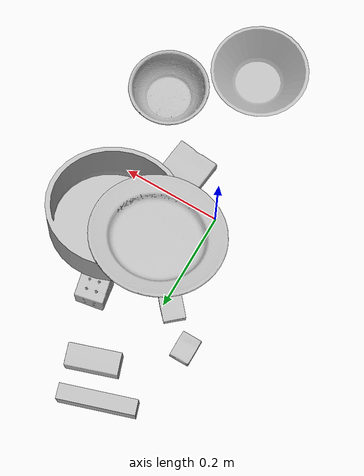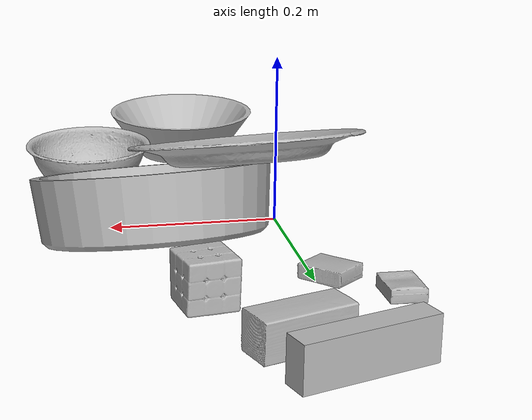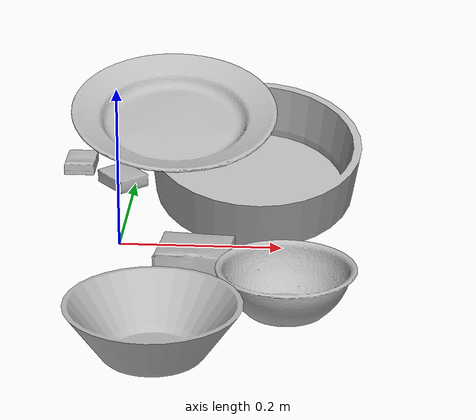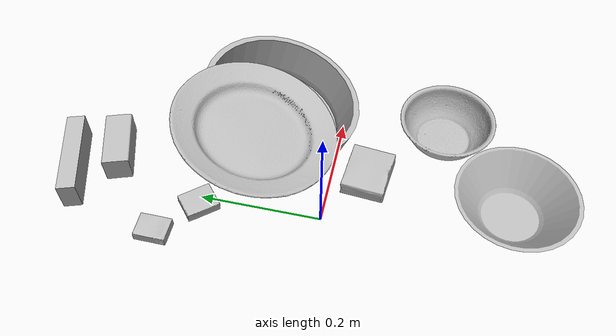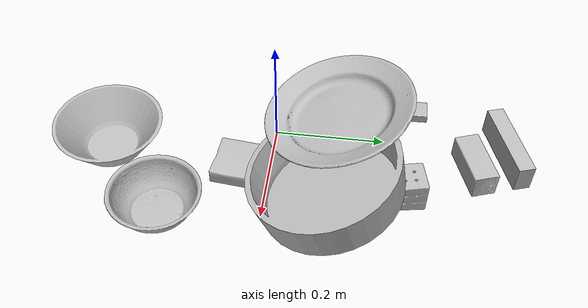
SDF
<sdf version="1.4">
  <world name="default">
    <light name="light1" type="point">
      <pose>0 0 1 0 0 0</pose>
      <diffuse>3 3 3 1</diffuse>
      <specular>3 3 3 1</specular>
    </light>
    <light name="light2" type="point">
      <pose>0 0.5 2 0 0 0</pose>
      <diffuse>1 1 1 1</diffuse>
      <specular>1 1 1 1</specular>
    </light>
    <light name="light3" type="point">
      <pose>0 0.5 2 0 0 0</pose>
      <diffuse>3 3 3 1</diffuse>
      <specular>3 3 3 1</specular>
    </light>
    <scene>
      <ambient>0.7 0.7 0.7</ambient>
    </scene>
    <model name="box1">
      <link name="link_box1">
        <collision name="default">
          <geometry>
            <mesh>
              <uri>model://pudding_box/collision_meshes/collision.obj</uri>
              <scale>0.5 0.5 0.5</scale>
            </mesh>
          </geometry>
          <surface>
            <friction>
              <ode>
                <mu>0.5</mu>
                <mu2>0.5</mu2>
              </ode>
            </friction>
          <contact>
        <ode>
            <max_vel>0</max_vel>
            <min_depth>0.0001</min_depth>
            <kp>1e8</kp>
        </ode>
    </contact></surface>
        </collision>
        <visual name="default">
          <geometry>
            <mesh>
              <uri>model://pudding_box/visual_meshes/visual.dae</uri>
              <scale>0.5 0.5 0.5</scale>
            </mesh>
          </geometry>
        </visual>
        <inertial>
          <mass>0.06043573096394539</mass>
          <pose>0.0002447410661261529 0.00040339428232982755 -0.0002594413817860186 0.005213102238104987 -0.006603800125102895 0.020079827017580043</pose>
          <inertia>
            <ixx>1.707987e-05</ixx>
            <iyy>1.1491458e-05</iyy>
            <izz>2.522289e-05</izz>
            <ixy>0</ixy>
            <ixz>0</ixz>
            <iyz>0</iyz>
          </inertia>
        </inertial>
      </link>
      <pose>-0.017067410051822662 0.19718965888023376 0.009862900711596012 0.022348211565890168 -0.011391853891993075 0.7199606608789171</pose>
    </model>
    <model name="box11">
      <link name="link_box11">
        <collision name="default">
          <geometry>
            <mesh>
              <uri>model://wood_block/collision_meshes/collision.obj</uri>
              <scale>0.5 0.5 0.5</scale>
            </mesh>
          </geometry>
          <surface>
            <friction>
              <ode>
                <mu>0.5</mu>
                <mu2>0.5</mu2>
              </ode>
            </friction>
          <contact>
        <ode>
            <max_vel>0</max_vel>
            <min_depth>0.0001</min_depth>
            <kp>1e8</kp>
        </ode>
    </contact></surface>
        </collision>
        <visual name="default">
          <geometry>
            <mesh>
              <uri>model://wood_block/visual_meshes/visual.dae</uri>
              <scale>0.5 0.5 0.5</scale>
            </mesh>
          </geometry>
        </visual>
        <inertial>
          <mass>0.22556793689727783</mass>
          <pose>-2.9066577553749084e-06 -0.000285404734313488 0.00013204290007706732 -0.05220975528916272 -0.005192696013017626 -0.0068613779154948285</pose>
          <inertia>
            <ixx>7.5461e-05</ixx>
            <iyy>0.00023838133</iyy>
            <izz>0.00023748967</izz>
            <ixy>0</ixy>
            <ixz>0</ixz>
            <iyz>0</iyz>
          </inertia>
        </inertial>
      </link>
      <pose>0.0559745654463768 0.36210376024246216 0.022629261016845703 -0.005208504183555906 0.005718701864859032 0.32936001406847104</pose>
    </model>
    <model name="box2">
      <link name="link_box2">
        <collision name="default">
          <geometry>
            <mesh>
              <uri>model://jenga/collision_meshes/collision.obj</uri>
              <scale>1.0 1.0 1.0</scale>
            </mesh>
          </geometry>
          <surface>
            <friction>
              <ode>
                <mu>0.5</mu>
                <mu2>0.5</mu2>
              </ode>
            </friction>
          <contact>
        <ode>
            <max_vel>0</max_vel>
            <min_depth>0.0001</min_depth>
            <kp>1e8</kp>
        </ode>
    </contact></surface>
        </collision>
        <visual name="default">
          <geometry>
            <mesh>
              <uri>model://jenga/visual_meshes/visual.dae</uri>
              <scale>1.0 1.0 1.0</scale>
            </mesh>
          </geometry>
        </visual>
        <inertial>
          <mass>0.2534179985523224</mass>
          <pose>-2.502856091268768e-07 -0.00010250010382151231 -4.0923401684267446e-05 0.0 -7.342154049184251e-07 0.0</pose>
          <inertia>
            <ixx>7.012692e-05</ixx>
            <iyy>0.00047517804</iyy>
            <izz>0.000507293</izz>
            <ixy>0</ixy>
            <ixz>0</ixz>
            <iyz>0</iyz>
          </inertia>
        </inertial>
      </link>
      <pose>0.00974248442798853 0.42227575182914734 0.02470194175839424 1.577497996110555 -1.9623707330678693e-07 -2.8238380409018946</pose>
    </model>
    <model name="box21">
      <link name="link_box21">
        <collision name="default">
          <geometry>
            <mesh>
              <uri>model://cracker_box/collision_meshes/collision.obj</uri>
              <scale>0.25 0.25 0.25</scale>
            </mesh>
          </geometry>
          <surface>
            <friction>
              <ode>
                <mu>0.5</mu>
                <mu2>0.5</mu2>
              </ode>
            </friction>
          <contact>
        <ode>
            <max_vel>0</max_vel>
            <min_depth>0.0001</min_depth>
            <kp>1e8</kp>
        </ode>
    </contact></surface>
        </collision>
        <visual name="default">
          <geometry>
            <mesh>
              <uri>model://cracker_box/visual_meshes/visual.dae</uri>
              <scale>0.25 0.25 0.25</scale>
            </mesh>
          </geometry>
        </visual>
        <inertial>
          <mass>0.04045860841870308</mass>
          <pose>0.0002366030093980953 6.358561950037256e-05 -0.0004257383698131889 -0.0003162076898946344 -0.011106488668808423 0.0025467959335197018</pose>
          <inertia>
            <ixx>6.4317906e-06</ixx>
            <iyy>1.062015e-05</iyy>
            <izz>1.5155927e-05</izz>
            <ixy>0</ixy>
            <ixz>0</ixz>
            <iyz>0</iyz>
          </inertia>
        </inertial>
      </link>
      <pose>-0.07954613119363785 0.2529817819595337 0.009096029214560986 -0.014050445695715993 -0.0050166176509792515 1.570976084937182</pose>
    </model>
    <model name="box3">
      <link name="link_box3">
        <collision name="default">
          <geometry>
            <mesh>
              <uri>model://rubiks_cube/collision_meshes/collision.obj</uri>
              <scale>1.0 1.0 1.0</scale>
            </mesh>
          </geometry>
          <surface>
            <friction>
              <ode>
                <mu>0.5</mu>
                <mu2>0.5</mu2>
              </ode>
            </friction>
          <contact>
        <ode>
            <max_vel>0</max_vel>
            <min_depth>0.0001</min_depth>
            <kp>1e8</kp>
        </ode>
    </contact></surface>
        </collision>
        <visual name="default">
          <geometry>
            <mesh>
              <uri>model://rubiks_cube/visual_meshes/visual.dae</uri>
              <scale>1.0 1.0 1.0</scale>
            </mesh>
          </geometry>
        </visual>
        <inertial>
          <mass>0.12779320776462555</mass>
          <pose>2.6721041649580002e-05 5.2569666877388954e-05 -7.264316082000732e-06 -0.054672129212199855 -0.09814057073985563 -0.03445704008669109</pose>
          <inertia>
            <ixx>7.061434e-05</ixx>
            <iyy>7.0285016e-05</iyy>
            <izz>7.119949e-05</izz>
            <ixy>0</ixy>
            <ixz>0</ixz>
            <iyz>0</iyz>
          </inertia>
        </inertial>
      </link>
      <pose>0.12678728997707367 0.24505113065242767 0.028688009828329086 0.000480567414024182 0.00012055733739499012 -1.3632416202446753</pose>
    </model>
    <model name="box31">
      <link name="link_box31">
        <collision name="default">
          <geometry>
            <mesh>
              <uri>model://gelatin_box/collision_meshes/collision.obj</uri>
              <scale>1.0 1.0 1.0</scale>
            </mesh>
          </geometry>
          <surface>
            <friction>
              <ode>
                <mu>0.5</mu>
                <mu2>0.5</mu2>
              </ode>
            </friction>
          <contact>
        <ode>
            <max_vel>0</max_vel>
            <min_depth>0.0001</min_depth>
            <kp>1e8</kp>
        </ode>
    </contact></surface>
        </collision>
        <visual name="default">
          <geometry>
            <mesh>
              <uri>model://gelatin_box/visual_meshes/visual.dae</uri>
              <scale>1.0 1.0 1.0</scale>
            </mesh>
          </geometry>
        </visual>
        <inertial>
          <mass>0.20050984621047974</mass>
          <pose>0.0004319618456065655 0.00011156872642459348 -0.00036403213744051754 -0.0010503720853528096 -0.004755817758068365 0.016440559471334753</pose>
          <inertia>
            <ixx>0.00014154361</ixx>
            <iyy>0.00010110386</iyy>
            <izz>0.0002154609</izz>
            <ixy>0</ixy>
            <ixz>0</ixz>
            <iyz>0</iyz>
          </inertia>
        </inertial>
      </link>
      <pose>0.09678047150373459 -0.06016187369823456 0.01516831386834383 0.005596381537081833 -0.007303379437643796 -1.683831804221774</pose>
    </model>
    <model name="plate1">
      <link name="link_plate1">
        <collision name="default">
          <geometry>
            <mesh>
              <uri>model://pan_tefal/collision_meshes/collision.obj</uri>
              <scale>1.0 1.0 1.0</scale>
            </mesh>
          </geometry>
          <surface>
            <friction>
              <ode>
                <mu>0.5</mu>
                <mu2>0.5</mu2>
              </ode>
            </friction>
          <contact>
        <ode>
            <max_vel>0</max_vel>
            <min_depth>0.0001</min_depth>
            <kp>1e8</kp>
        </ode>
    </contact></surface>
        </collision>
        <visual name="default">
          <geometry>
            <mesh>
              <uri>model://pan_tefal/visual_meshes/visual.dae</uri>
              <scale>1.0 1.0 1.0</scale>
            </mesh>
          </geometry>
        </visual>
        <inertial>
          <mass>0.9166961908340454</mass>
          <pose>-0.00018002631259150803 3.279098018538207e-05 -0.00851493515074253 0.0008190256602529888 -0.0003301357182707761 -0.33185348708971</pose>
          <inertia>
            <ixx>0.006327908</ixx>
            <iyy>0.006368705</iyy>
            <izz>0.01164846</izz>
            <ixy>0</ixy>
            <ixz>0</ixz>
            <iyz>0</iyz>
          </inertia>
        </inertial>
      </link>
      <pose>0.16234032809734344 0.1086675301194191 0.06561664491891861 0.07396381099520764 -0.26261169250544314 1.4275595272296728</pose>
    </model>
    <model name="bowl1">
      <link name="link_bowl1">
        <collision name="default">
          <geometry>
            <mesh>
              <uri>model://bowl_a/collision_meshes/collision.obj</uri>
              <scale>1.0 1.0 1.0</scale>
            </mesh>
          </geometry>
          <surface>
            <friction>
              <ode>
                <mu>0.5</mu>
                <mu2>0.5</mu2>
              </ode>
            </friction>
          <contact>
        <ode>
            <max_vel>0</max_vel>
            <min_depth>0.0001</min_depth>
            <kp>1e8</kp>
        </ode>
    </contact></surface>
        </collision>
        <visual name="default">
          <geometry>
            <mesh>
              <uri>model://bowl_a/visual_meshes/visual.dae</uri>
              <scale>1.0 1.0 1.0</scale>
            </mesh>
          </geometry>
        </visual>
        <inertial>
          <mass>0.44606471061706543</mass>
          <pose>0.0002786746481433511 4.7312179958680645e-05 -0.0013765294570475817 -0.0009805488171165768 -0.0010938123304380014 -0.19122487556540352</pose>
          <inertia>
            <ixx>0.0012699668</ixx>
            <iyy>0.001277764</iyy>
            <izz>0.0022586845</izz>
            <ixy>0</ixy>
            <ixz>0</ixz>
            <iyz>0</iyz>
          </inertia>
        </inertial>
      </link>
      <pose>0.06985343992710114 -0.29584628343582153 0.03038340061903 -7.335978188316741e-06 1.054796963167432e-06 -1.3397162640598463</pose>
    </model>
    <model name="plate2">
      <link name="link_plate2">
        <collision name="default">
          <geometry>
            <mesh>
              <uri>model://plate/collision_meshes/collision.obj</uri>
              <scale>1.0 1.0 1.0</scale>
            </mesh>
          </geometry>
          <surface>
            <friction>
              <ode>
                <mu>0.5</mu>
                <mu2>0.5</mu2>
              </ode>
            </friction>
          <contact>
        <ode>
            <max_vel>0</max_vel>
            <min_depth>0.0001</min_depth>
            <kp>1e8</kp>
        </ode>
    </contact></surface>
        </collision>
        <visual name="default">
          <geometry>
            <mesh>
              <uri>model://plate/visual_meshes/visual.dae</uri>
              <scale>1.0 1.0 1.0</scale>
            </mesh>
          </geometry>
        </visual>
        <inertial>
          <mass>0.10088177025318146</mass>
          <pose>-0.0006044645560905337 0.0002782582596410066 -0.0010561994276940823 0.002218810424575964 -0.003225458488037908 0.4526011088858205</pose>
          <inertia>
            <ixx>0.00047192685</ixx>
            <iyy>0.00046741302</iyy>
            <izz>0.00092301855</izz>
            <ixy>0</ixy>
            <ixz>0</ixz>
            <iyz>0</iyz>
          </inertia>
        </inertial>
      </link>
      <pose>0.05926591530442238 0.1181798130273819 0.12552012503147125 -0.22468442470003994 0.15126809229799676 -2.4307067863282903</pose>
    </model>
    <model name="bowl2">
      <link name="link_bowl2">
        <collision name="default">
          <geometry>
            <mesh>
              <uri>model://bowl/collision_meshes/collision.obj</uri>
              <scale>1.0 1.0 1.0</scale>
            </mesh>
          </geometry>
          <surface>
            <friction>
              <ode>
                <mu>0.5</mu>
                <mu2>0.5</mu2>
              </ode>
            </friction>
          <contact>
        <ode>
            <max_vel>0</max_vel>
            <min_depth>0.0001</min_depth>
            <kp>1e8</kp>
        </ode>
    </contact></surface>
        </collision>
        <visual name="default">
          <geometry>
            <mesh>
              <uri>model://bowl/visual_meshes/visual.dae</uri>
              <scale>1.0 1.0 1.0</scale>
            </mesh>
          </geometry>
        </visual>
        <inertial>
          <mass>0.10570208728313446</mass>
          <pose>0.00020445376867428422 -0.00103021040558815 -0.000804263399913907 -0.015764090239829616 0.014546785988443214 0.7140402180265782</pose>
          <inertia>
            <ixx>0.00024280604</ixx>
            <iyy>0.0002373808</iyy>
            <izz>0.0004084832</izz>
            <ixy>0</ixy>
            <ixz>0</ixz>
            <iyz>0</iyz>
          </inertia>
        </inertial>
      </link>
      <pose>0.20977115631103516 -0.17677123844623566 0.02778000943362713 -2.62743908381519e-08 -5.412881355649325e-10 -0.2899068726423879</pose>
    </model>
  <physics type="ode">
      <max_contacts>50</max_contacts>
      <ode>
        <solver>
          <type>quick</type>
          <iters>75</iters>
        </solver>
        <constraints>
          <contact_max_correcting_vel>0</contact_max_correcting_vel>
          <contact_surface_layer>0</contact_surface_layer>
        </constraints>
      </ode>
    </physics></world>
</sdf>
